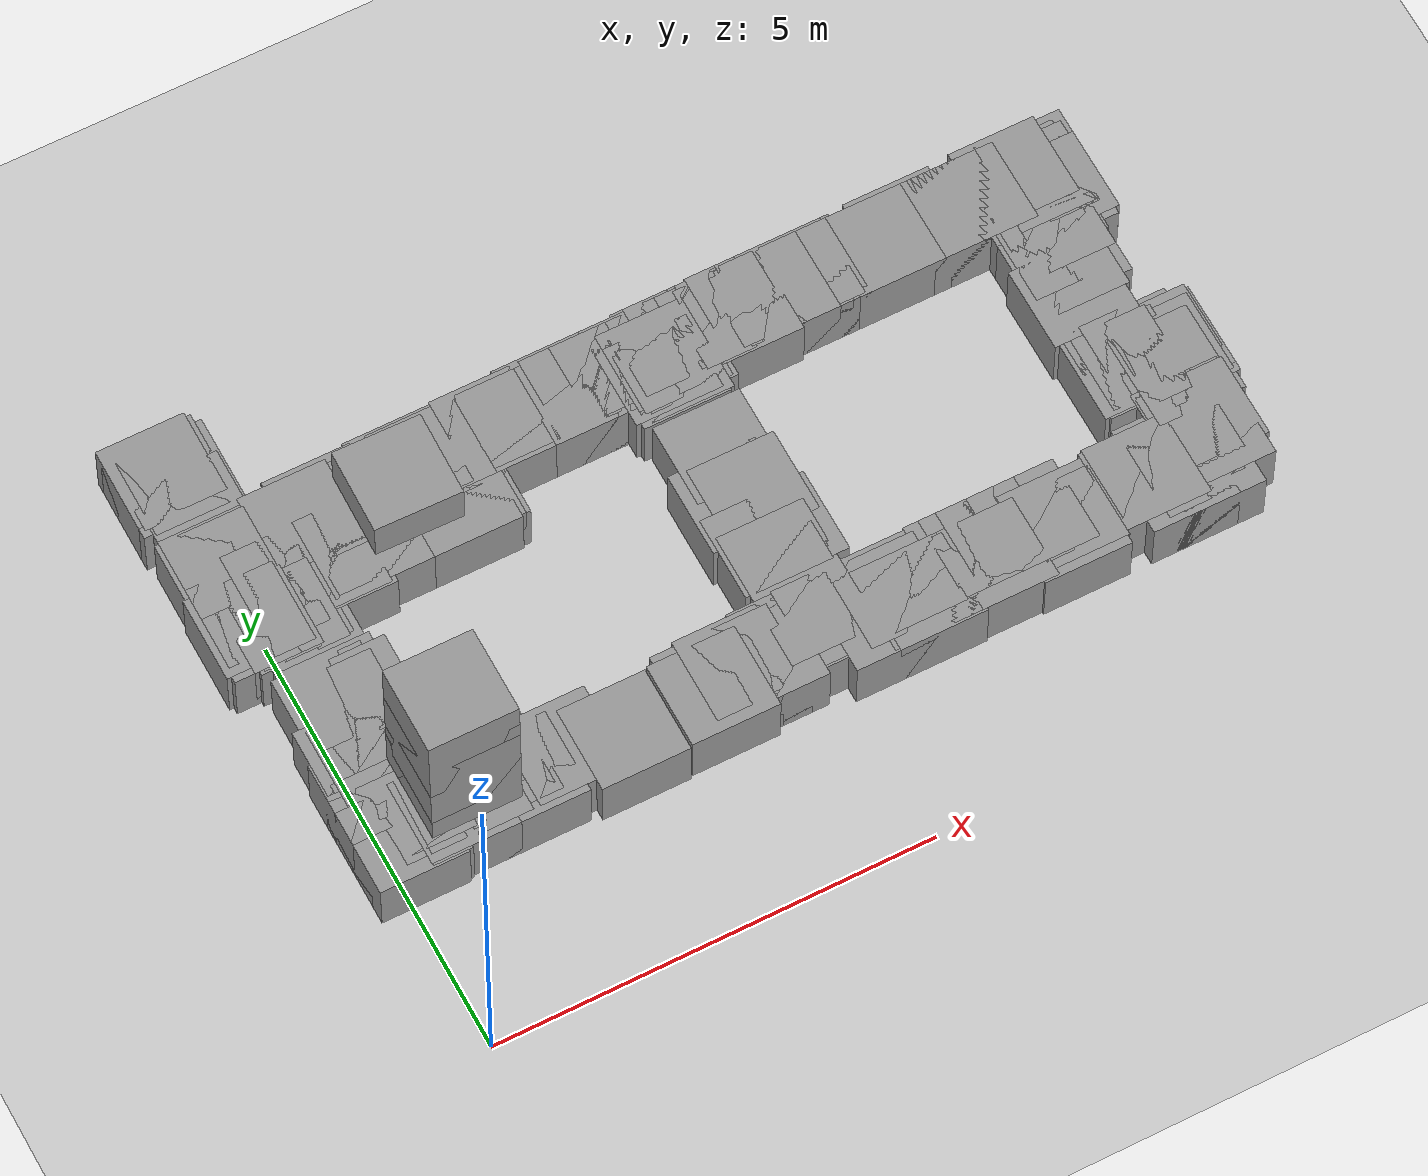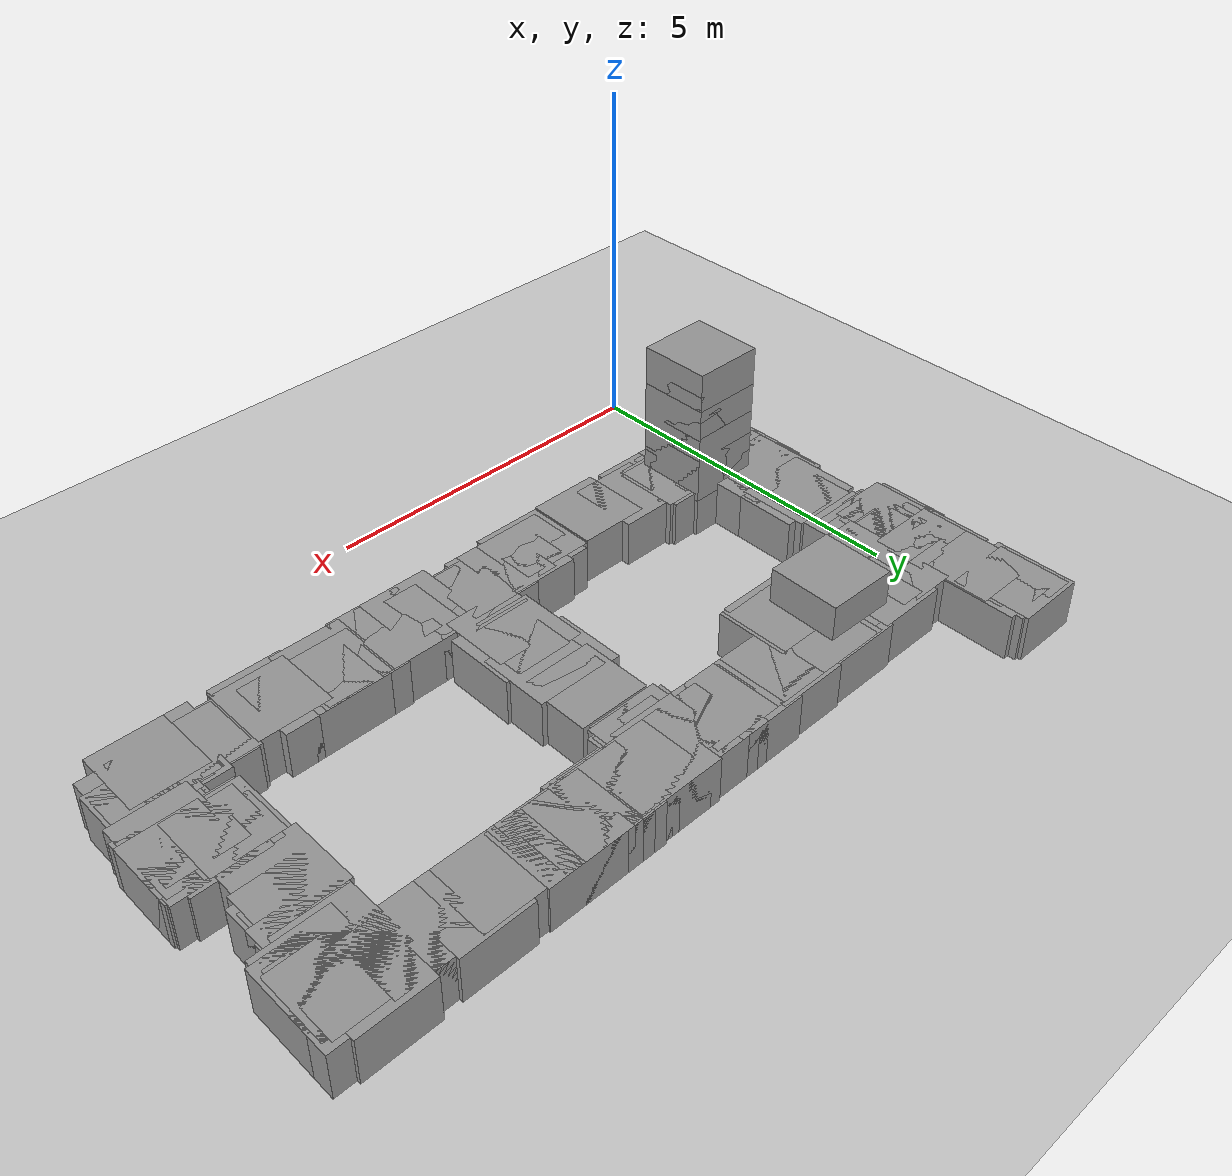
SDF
<sdf version="1.7">
 <world name="default">
  <model name="ground_plane">
   <static>1</static>
   <link name="link">
    <collision name="collision">
     <geometry><plane><normal>0 0 1</normal><size>100 100</size></plane></geometry>
     <surface>
      <contact><collide_bitmask>65535</collide_bitmask></contact>
      <friction><ode><mu>100</mu><mu2>50</mu2></ode></friction>
     </surface>
    </collision>
    <visual name="visual">
     <cast_shadows>0</cast_shadows>
     <geometry><plane><normal>0 0 1</normal><size>100 100</size></plane></geometry>
     <material>
      <script><uri>file://media/materials/scripts/gazebo.material</uri><name>Gazebo/Grey</name></script>
     </material>
    </visual>
   </link>
  </model>
  <include>
   <uri>model://unit_box</uri>
   <name>map_box_53</name>
   <pose>-0.14281 7.02254 0.15000 0.00000 0.00000 0.00000</pose>
   <scale>0.05000 0.05000 0.80000</scale>
  </include>
  <include>
   <uri>model://unit_box</uri>
   <name>map_box_54</name>
   <pose>-0.09281 6.97254 0.15000 0.00000 0.00000 0.00000</pose>
   <scale>0.05000 0.05000 0.80000</scale>
  </include>
  <include>
   <uri>model://unit_box</uri>
   <name>map_box_55</name>
   <pose>-0.14281 6.89754 0.15000 0.00000 0.00000 0.00000</pose>
   <scale>0.05000 0.10000 0.80000</scale>
  </include>
  <include>
   <uri>model://unit_box</uri>
   <name>map_box_56</name>
   <pose>-0.01781 6.87254 0.15000 0.00000 0.00000 0.00000</pose>
   <scale>0.20000 0.05000 0.80000</scale>
  </include>
  <include>
   <uri>model://unit_box</uri>
   <name>map_box_61</name>
   <pose>-0.04281 6.47254 0.15000 0.00000 0.00000 0.00000</pose>
   <scale>0.05000 0.05000 0.80000</scale>
  </include>
  <include>
   <uri>model://unit_box</uri>
   <name>map_box_76</name>
   <pose>9.18219 6.09754 0.15000 0.00000 0.00000 0.00000</pose>
   <scale>0.50000 0.10000 0.80000</scale>
  </include>
  <include>
   <uri>model://unit_box</uri>
   <name>map_box_80</name>
   <pose>5.20719 6.02254 0.15000 0.00000 0.00000 0.00000</pose>
   <scale>0.05000 0.15000 0.80000</scale>
  </include>
  <include>
   <uri>model://unit_box</uri>
   <name>map_box_81</name>
   <pose>5.35719 6.02254 0.15000 0.00000 0.00000 0.00000</pose>
   <scale>0.05000 0.15000 0.80000</scale>
  </include>
  <include>
   <uri>model://unit_box</uri>
   <name>map_box_82</name>
   <pose>5.55719 6.02254 0.15000 0.00000 0.00000 0.00000</pose>
   <scale>0.25000 0.15000 0.80000</scale>
  </include>
  <include>
   <uri>model://unit_box</uri>
   <name>map_box_83</name>
   <pose>5.75719 6.02254 0.15000 0.00000 0.00000 0.00000</pose>
   <scale>0.05000 0.15000 0.80000</scale>
  </include>
  <include>
   <uri>model://unit_box</uri>
   <name>map_box_84</name>
   <pose>5.85719 6.02254 0.15000 0.00000 0.00000 0.00000</pose>
   <scale>0.05000 0.15000 0.80000</scale>
  </include>
  <include>
   <uri>model://unit_box</uri>
   <name>map_box_85</name>
   <pose>6.08219 6.04754 0.15000 0.00000 0.00000 0.00000</pose>
   <scale>0.10000 0.10000 0.80000</scale>
  </include>
  <include>
   <uri>model://unit_box</uri>
   <name>map_box_86</name>
   <pose>6.25719 6.04754 0.15000 0.00000 0.00000 0.00000</pose>
   <scale>0.15000 0.10000 0.80000</scale>
  </include>
  <include>
   <uri>model://unit_box</uri>
   <name>map_box_87</name>
   <pose>6.43219 6.04754 0.15000 0.00000 0.00000 0.00000</pose>
   <scale>0.10000 0.10000 0.80000</scale>
  </include>
  <include>
   <uri>model://unit_box</uri>
   <name>map_box_88</name>
   <pose>6.55719 6.04754 0.15000 0.00000 0.00000 0.00000</pose>
   <scale>0.05000 0.10000 0.80000</scale>
  </include>
  <include>
   <uri>model://unit_box</uri>
   <name>map_box_89</name>
   <pose>6.65719 6.04754 0.15000 0.00000 0.00000 0.00000</pose>
   <scale>0.05000 0.10000 0.80000</scale>
  </include>
  <include>
   <uri>model://unit_box</uri>
   <name>map_box_90</name>
   <pose>6.75719 6.04754 0.15000 0.00000 0.00000 0.00000</pose>
   <scale>0.05000 0.10000 0.80000</scale>
  </include>
  <include>
   <uri>model://unit_box</uri>
   <name>map_box_91</name>
   <pose>7.93219 6.07254 0.15000 0.00000 0.00000 0.00000</pose>
   <scale>2.00000 0.05000 0.80000</scale>
  </include>
  <include>
   <uri>model://unit_box</uri>
   <name>map_box_92</name>
   <pose>9.45719 6.04754 0.15000 0.00000 0.00000 0.00000</pose>
   <scale>0.05000 0.10000 0.80000</scale>
  </include>
  <include>
   <uri>model://unit_box</uri>
   <name>map_box_95</name>
   <pose>3.83219 5.99754 0.15000 0.00000 0.00000 0.00000</pose>
   <scale>0.10000 0.10000 0.80000</scale>
  </include>
  <include>
   <uri>model://unit_box</uri>
   <name>map_box_96</name>
   <pose>4.40719 5.99754 0.15000 0.00000 0.00000 0.00000</pose>
   <scale>0.05000 0.10000 0.80000</scale>
  </include>
  <include>
   <uri>model://unit_box</uri>
   <name>map_box_97</name>
   <pose>4.55719 5.99754 0.15000 0.00000 0.00000 0.00000</pose>
   <scale>0.05000 0.10000 0.80000</scale>
  </include>
  <include>
   <uri>model://unit_box</uri>
   <name>map_box_98</name>
   <pose>4.73219 5.99754 0.15000 0.00000 0.00000 0.00000</pose>
   <scale>0.20000 0.10000 0.80000</scale>
  </include>
  <include>
   <uri>model://unit_box</uri>
   <name>map_box_99</name>
   <pose>5.10719 5.99754 0.15000 0.00000 0.00000 0.00000</pose>
   <scale>0.15000 0.10000 0.80000</scale>
  </include>
  <include>
   <uri>model://unit_box</uri>
   <name>map_box_100</name>
   <pose>5.28219 5.99754 0.15000 0.00000 0.00000 0.00000</pose>
   <scale>0.10000 0.10000 0.80000</scale>
  </include>
  <include>
   <uri>model://unit_box</uri>
   <name>map_box_101</name>
   <pose>5.40719 5.99754 0.15000 0.00000 0.00000 0.00000</pose>
   <scale>0.05000 0.10000 0.80000</scale>
  </include>
  <include>
   <uri>model://unit_box</uri>
   <name>map_box_102</name>
   <pose>5.70719 5.99754 0.15000 0.00000 0.00000 0.00000</pose>
   <scale>0.05000 0.10000 0.80000</scale>
  </include>
  <include>
   <uri>model://unit_box</uri>
   <name>map_box_103</name>
   <pose>5.80719 5.99754 0.15000 0.00000 0.00000 0.00000</pose>
   <scale>0.05000 0.10000 0.80000</scale>
  </include>
  <include>
   <uri>model://unit_box</uri>
   <name>map_box_104</name>
   <pose>5.95719 6.02254 0.15000 0.00000 0.00000 0.00000</pose>
   <scale>0.15000 0.05000 0.80000</scale>
  </include>
  <include>
   <uri>model://unit_box</uri>
   <name>map_box_105</name>
   <pose>6.15719 6.02254 0.15000 0.00000 0.00000 0.00000</pose>
   <scale>0.05000 0.05000 0.80000</scale>
  </include>
  <include>
   <uri>model://unit_box</uri>
   <name>map_box_106</name>
   <pose>6.35719 6.02254 0.15000 0.00000 0.00000 0.00000</pose>
   <scale>0.05000 0.05000 0.80000</scale>
  </include>
  <include>
   <uri>model://unit_box</uri>
   <name>map_box_107</name>
   <pose>6.50719 6.02254 0.15000 0.00000 0.00000 0.00000</pose>
   <scale>0.05000 0.05000 0.80000</scale>
  </include>
  <include>
   <uri>model://unit_box</uri>
   <name>map_box_108</name>
   <pose>6.60719 6.02254 0.15000 0.00000 0.00000 0.00000</pose>
   <scale>0.05000 0.05000 0.80000</scale>
  </include>
  <include>
   <uri>model://unit_box</uri>
   <name>map_box_109</name>
   <pose>6.70719 6.02254 0.15000 0.00000 0.00000 0.00000</pose>
   <scale>0.05000 0.05000 0.80000</scale>
  </include>
  <include>
   <uri>model://unit_box</uri>
   <name>map_box_110</name>
   <pose>7.58219 6.02254 0.15000 0.00000 0.00000 0.00000</pose>
   <scale>1.60000 0.05000 0.80000</scale>
  </include>
  <include>
   <uri>model://unit_box</uri>
   <name>map_box_111</name>
   <pose>8.45719 6.02254 0.15000 0.00000 0.00000 0.00000</pose>
   <scale>0.05000 0.05000 0.80000</scale>
  </include>
  <include>
   <uri>model://unit_box</uri>
   <name>map_box_112</name>
   <pose>8.65719 6.02254 0.15000 0.00000 0.00000 0.00000</pose>
   <scale>0.25000 0.05000 0.80000</scale>
  </include>
  <include>
   <uri>model://unit_box</uri>
   <name>map_box_113</name>
   <pose>9.40719 5.92254 0.15000 0.00000 0.00000 0.00000</pose>
   <scale>0.05000 0.25000 0.80000</scale>
  </include>
  <include>
   <uri>model://unit_box</uri>
   <name>map_box_119</name>
   <pose>2.10719 5.94754 0.15000 0.00000 0.00000 0.00000</pose>
   <scale>0.25000 0.10000 0.80000</scale>
  </include>
  <include>
   <uri>model://unit_box</uri>
   <name>map_box_120</name>
   <pose>2.35719 5.92254 0.15000 0.00000 0.00000 0.00000</pose>
   <scale>0.05000 0.15000 0.80000</scale>
  </include>
  <include>
   <uri>model://unit_box</uri>
   <name>map_box_121</name>
   <pose>3.10719 5.97254 0.15000 0.00000 0.00000 0.00000</pose>
   <scale>1.35000 0.05000 0.80000</scale>
  </include>
  <include>
   <uri>model://unit_box</uri>
   <name>map_box_122</name>
   <pose>4.13219 5.97254 0.15000 0.00000 0.00000 0.00000</pose>
   <scale>0.50000 0.05000 0.80000</scale>
  </include>
  <include>
   <uri>model://unit_box</uri>
   <name>map_box_123</name>
   <pose>4.48219 5.97254 0.15000 0.00000 0.00000 0.00000</pose>
   <scale>0.10000 0.05000 0.80000</scale>
  </include>
  <include>
   <uri>model://unit_box</uri>
   <name>map_box_124</name>
   <pose>4.60719 5.97254 0.15000 0.00000 0.00000 0.00000</pose>
   <scale>0.05000 0.05000 0.80000</scale>
  </include>
  <include>
   <uri>model://unit_box</uri>
   <name>map_box_125</name>
   <pose>4.88219 5.92254 0.15000 0.00000 0.00000 0.00000</pose>
   <scale>0.10000 0.15000 0.80000</scale>
  </include>
  <include>
   <uri>model://unit_box</uri>
   <name>map_box_126</name>
   <pose>5.00719 5.82254 0.15000 0.00000 0.00000 0.00000</pose>
   <scale>0.05000 0.35000 0.80000</scale>
  </include>
  <include>
   <uri>model://unit_box</uri>
   <name>map_box_127</name>
   <pose>5.90719 5.97254 0.15000 0.00000 0.00000 0.00000</pose>
   <scale>0.05000 0.05000 0.80000</scale>
  </include>
  <include>
   <uri>model://unit_box</uri>
   <name>map_box_128</name>
   <pose>9.33219 5.97254 0.15000 0.00000 0.00000 0.00000</pose>
   <scale>0.10000 0.05000 0.80000</scale>
  </include>
  <include>
   <uri>model://unit_box</uri>
   <name>map_box_130</name>
   <pose>-0.04281 5.79754 0.15000 0.00000 0.00000 0.00000</pose>
   <scale>0.05000 0.30000 0.80000</scale>
  </include>
  <include>
   <uri>model://unit_box</uri>
   <name>map_box_131</name>
   <pose>1.18219 5.92254 0.15000 0.00000 0.00000 0.00000</pose>
   <scale>1.60000 0.05000 0.80000</scale>
  </include>
  <include>
   <uri>model://unit_box</uri>
   <name>map_box_132</name>
   <pose>2.28219 5.92254 0.15000 0.00000 0.00000 0.00000</pose>
   <scale>0.10000 0.05000 0.80000</scale>
  </include>
  <include>
   <uri>model://unit_box</uri>
   <name>map_box_133</name>
   <pose>3.05719 5.92254 0.15000 0.00000 0.00000 0.00000</pose>
   <scale>1.35000 0.05000 0.80000</scale>
  </include>
  <include>
   <uri>model://unit_box</uri>
   <name>map_box_134</name>
   <pose>4.03219 5.92254 0.15000 0.00000 0.00000 0.00000</pose>
   <scale>0.10000 0.05000 0.80000</scale>
  </include>
  <include>
   <uri>model://unit_box</uri>
   <name>map_box_135</name>
   <pose>4.15719 5.92254 0.15000 0.00000 0.00000 0.00000</pose>
   <scale>0.05000 0.05000 0.80000</scale>
  </include>
  <include>
   <uri>model://unit_box</uri>
   <name>map_box_136</name>
   <pose>5.05719 5.79754 0.15000 0.00000 0.00000 0.00000</pose>
   <scale>0.05000 0.30000 0.80000</scale>
  </include>
  <include>
   <uri>model://unit_box</uri>
   <name>map_box_137</name>
   <pose>9.30719 5.89754 0.15000 0.00000 0.00000 0.00000</pose>
   <scale>0.05000 0.10000 0.80000</scale>
  </include>
  <include>
   <uri>model://unit_box</uri>
   <name>map_box_142</name>
   <pose>0.88219 5.87254 0.15000 0.00000 0.00000 0.00000</pose>
   <scale>1.00000 0.05000 0.80000</scale>
  </include>
  <include>
   <uri>model://unit_box</uri>
   <name>map_box_143</name>
   <pose>1.45719 5.87254 0.15000 0.00000 0.00000 0.00000</pose>
   <scale>0.05000 0.05000 0.80000</scale>
  </include>
  <include>
   <uri>model://unit_box</uri>
   <name>map_box_144</name>
   <pose>2.43219 5.87254 0.15000 0.00000 0.00000 0.00000</pose>
   <scale>0.10000 0.05000 0.80000</scale>
  </include>
  <include>
   <uri>model://unit_box</uri>
   <name>map_box_145</name>
   <pose>4.95719 5.87254 0.15000 0.00000 0.00000 0.00000</pose>
   <scale>0.05000 0.05000 0.80000</scale>
  </include>
  <include>
   <uri>model://unit_box</uri>
   <name>map_box_146</name>
   <pose>9.35719 5.87254 0.15000 0.00000 0.00000 0.00000</pose>
   <scale>0.05000 0.05000 0.80000</scale>
  </include>
  <include>
   <uri>model://unit_box</uri>
   <name>map_box_149</name>
   <pose>0.43219 5.34754 0.15000 0.00000 0.00000 0.00000</pose>
   <scale>0.10000 1.00000 0.80000</scale>
  </include>
  <include>
   <uri>model://unit_box</uri>
   <name>map_box_150</name>
   <pose>1.35719 5.82254 0.15000 0.00000 0.00000 0.00000</pose>
   <scale>0.05000 0.05000 0.80000</scale>
  </include>
  <include>
   <uri>model://unit_box</uri>
   <name>map_box_151</name>
   <pose>4.85719 5.74754 0.15000 0.00000 0.00000 0.00000</pose>
   <scale>0.05000 0.20000 0.80000</scale>
  </include>
  <include>
   <uri>model://unit_box</uri>
   <name>map_box_152</name>
   <pose>9.45719 5.74754 0.15000 0.00000 0.00000 0.00000</pose>
   <scale>0.05000 0.20000 0.80000</scale>
  </include>
  <include>
   <uri>model://unit_box</uri>
   <name>map_box_158</name>
   <pose>-0.09281 5.77254 0.15000 0.00000 0.00000 0.00000</pose>
   <scale>0.05000 0.05000 0.80000</scale>
  </include>
  <include>
   <uri>model://unit_box</uri>
   <name>map_box_159</name>
   <pose>4.95719 5.69754 0.15000 0.00000 0.00000 0.00000</pose>
   <scale>0.05000 0.20000 0.80000</scale>
  </include>
  <include>
   <uri>model://unit_box</uri>
   <name>map_box_165</name>
   <pose>4.90719 5.67254 0.15000 0.00000 0.00000 0.00000</pose>
   <scale>0.05000 0.05000 0.80000</scale>
  </include>
  <include>
   <uri>model://unit_box</uri>
   <name>map_box_166</name>
   <pose>9.10719 5.59754 0.15000 0.00000 0.00000 0.00000</pose>
   <scale>0.05000 0.20000 0.80000</scale>
  </include>
  <include>
   <uri>model://unit_box</uri>
   <name>map_box_167</name>
   <pose>9.40719 5.67254 0.15000 0.00000 0.00000 0.00000</pose>
   <scale>0.05000 0.05000 0.80000</scale>
  </include>
  <include>
   <uri>model://unit_box</uri>
   <name>map_box_171</name>
   <pose>0.00719 5.54754 0.15000 0.00000 0.00000 0.00000</pose>
   <scale>0.05000 0.20000 0.80000</scale>
  </include>
  <include>
   <uri>model://unit_box</uri>
   <name>map_box_175</name>
   <pose>9.05719 4.57254 0.15000 0.00000 0.00000 0.00000</pose>
   <scale>0.05000 2.05000 0.80000</scale>
  </include>
  <include>
   <uri>model://unit_box</uri>
   <name>map_box_176</name>
   <pose>9.23219 5.57254 0.15000 0.00000 0.00000 0.00000</pose>
   <scale>0.10000 0.05000 0.80000</scale>
  </include>
  <include>
   <uri>model://unit_box</uri>
   <name>map_box_179</name>
   <pose>9.20719 5.37254 0.15000 0.00000 0.00000 0.00000</pose>
   <scale>0.05000 0.35000 0.80000</scale>
  </include>
  <include>
   <uri>model://unit_box</uri>
   <name>map_box_182</name>
   <pose>0.05719 5.37254 0.15000 0.00000 0.00000 0.00000</pose>
   <scale>0.05000 0.25000 0.80000</scale>
  </include>
  <include>
   <uri>model://unit_box</uri>
   <name>map_box_187</name>
   <pose>1.30719 5.39754 0.15000 0.00000 0.00000 0.00000</pose>
   <scale>0.05000 0.10000 0.80000</scale>
  </include>
  <include>
   <uri>model://unit_box</uri>
   <name>map_box_188</name>
   <pose>2.40719 5.37254 0.15000 0.00000 0.00000 0.00000</pose>
   <scale>0.05000 0.15000 0.80000</scale>
  </include>
  <include>
   <uri>model://unit_box</uri>
   <name>map_box_189</name>
   <pose>9.10719 4.89754 0.15000 0.00000 0.00000 0.00000</pose>
   <scale>0.05000 1.10000 0.80000</scale>
  </include>
  <include>
   <uri>model://unit_box</uri>
   <name>map_box_194</name>
   <pose>0.00719 5.34754 0.15000 0.00000 0.00000 0.00000</pose>
   <scale>0.05000 0.10000 0.80000</scale>
  </include>
  <include>
   <uri>model://unit_box</uri>
   <name>map_box_195</name>
   <pose>1.25719 5.37254 0.15000 0.00000 0.00000 0.00000</pose>
   <scale>0.05000 0.05000 0.80000</scale>
  </include>
  <include>
   <uri>model://unit_box</uri>
   <name>map_box_196</name>
   <pose>1.35719 5.34754 0.15000 0.00000 0.00000 0.00000</pose>
   <scale>0.05000 0.10000 0.80000</scale>
  </include>
  <include>
   <uri>model://unit_box</uri>
   <name>map_box_197</name>
   <pose>2.35719 5.34754 0.15000 0.00000 0.00000 0.00000</pose>
   <scale>0.05000 0.10000 0.80000</scale>
  </include>
  <include>
   <uri>model://unit_box</uri>
   <name>map_box_198</name>
   <pose>2.45719 5.37254 0.15000 0.00000 0.00000 0.00000</pose>
   <scale>0.05000 0.05000 0.80000</scale>
  </include>
  <include>
   <uri>model://unit_box</uri>
   <name>map_box_203</name>
   <pose>0.85719 5.29754 0.15000 0.00000 0.00000 0.00000</pose>
   <scale>0.05000 0.10000 0.80000</scale>
  </include>
  <include>
   <uri>model://unit_box</uri>
   <name>map_box_208</name>
   <pose>0.10719 5.19754 0.15000 0.00000 0.00000 0.00000</pose>
   <scale>0.05000 0.20000 0.80000</scale>
  </include>
  <include>
   <uri>model://unit_box</uri>
   <name>map_box_209</name>
   <pose>0.90719 5.27254 0.15000 0.00000 0.00000 0.00000</pose>
   <scale>0.05000 0.05000 0.80000</scale>
  </include>
  <include>
   <uri>model://unit_box</uri>
   <name>map_box_213</name>
   <pose>-0.04281 5.17254 0.15000 0.00000 0.00000 0.00000</pose>
   <scale>0.05000 0.05000 0.80000</scale>
  </include>
  <include>
   <uri>model://unit_box</uri>
   <name>map_box_214</name>
   <pose>9.15719 5.14754 0.15000 0.00000 0.00000 0.00000</pose>
   <scale>0.05000 0.10000 0.80000</scale>
  </include>
  <include>
   <uri>model://unit_box</uri>
   <name>map_box_216</name>
   <pose>0.20719 5.12254 0.15000 0.00000 0.00000 0.00000</pose>
   <scale>0.15000 0.05000 0.80000</scale>
  </include>
  <include>
   <uri>model://unit_box</uri>
   <name>map_box_217</name>
   <pose>9.20719 5.02254 0.15000 0.00000 0.00000 0.00000</pose>
   <scale>0.05000 0.25000 0.80000</scale>
  </include>
  <include>
   <uri>model://unit_box</uri>
   <name>map_box_219</name>
   <pose>-0.11781 5.07254 0.15000 0.00000 0.00000 0.00000</pose>
   <scale>0.10000 0.05000 0.80000</scale>
  </include>
  <include>
   <uri>model://unit_box</uri>
   <name>map_box_220</name>
   <pose>0.15719 4.99754 0.15000 0.00000 0.00000 0.00000</pose>
   <scale>0.05000 0.20000 0.80000</scale>
  </include>
  <include>
   <uri>model://unit_box</uri>
   <name>map_box_221</name>
   <pose>0.25719 4.97254 0.15000 0.00000 0.00000 0.00000</pose>
   <scale>0.05000 0.25000 0.80000</scale>
  </include>
  <include>
   <uri>model://unit_box</uri>
   <name>map_box_223</name>
   <pose>-0.06781 4.99754 0.15000 0.00000 0.00000 0.00000</pose>
   <scale>0.10000 0.10000 0.80000</scale>
  </include>
  <include>
   <uri>model://unit_box</uri>
   <name>map_box_224</name>
   <pose>0.20719 4.94754 0.15000 0.00000 0.00000 0.00000</pose>
   <scale>0.05000 0.20000 0.80000</scale>
  </include>
  <include>
   <uri>model://unit_box</uri>
   <name>map_box_226</name>
   <pose>0.33219 4.89754 0.15000 0.00000 0.00000 0.00000</pose>
   <scale>0.10000 0.10000 0.80000</scale>
  </include>
  <include>
   <uri>model://unit_box</uri>
   <name>map_box_230</name>
   <pose>4.98219 4.64754 0.15000 0.00000 0.00000 0.00000</pose>
   <scale>0.20000 0.10000 0.80000</scale>
  </include>
  <include>
   <uri>model://unit_box</uri>
   <name>map_box_231</name>
   <pose>4.85719 4.07254 0.15000 0.00000 0.00000 0.00000</pose>
   <scale>0.05000 1.15000 0.80000</scale>
  </include>
  <include>
   <uri>model://unit_box</uri>
   <name>map_box_232</name>
   <pose>5.10719 3.49754 0.15000 0.00000 0.00000 0.00000</pose>
   <scale>0.05000 2.30000 0.80000</scale>
  </include>
  <include>
   <uri>model://unit_box</uri>
   <name>map_box_233</name>
   <pose>4.90719 3.47254 0.15000 0.00000 0.00000 0.00000</pose>
   <scale>0.05000 2.25000 0.80000</scale>
  </include>
  <include>
   <uri>model://unit_box</uri>
   <name>map_box_234</name>
   <pose>5.05719 4.04754 0.15000 0.00000 0.00000 0.00000</pose>
   <scale>0.05000 1.10000 0.80000</scale>
  </include>
  <include>
   <uri>model://unit_box</uri>
   <name>map_box_252</name>
   <pose>0.38219 3.89754 0.15000 0.00000 0.00000 0.00000</pose>
   <scale>0.20000 0.10000 0.80000</scale>
  </include>
  <include>
   <uri>model://unit_box</uri>
   <name>map_box_254</name>
   <pose>0.25719 3.84754 0.15000 0.00000 0.00000 0.00000</pose>
   <scale>0.05000 0.10000 0.80000</scale>
  </include>
  <include>
   <uri>model://unit_box</uri>
   <name>map_box_255</name>
   <pose>0.50719 3.79754 0.15000 0.00000 0.00000 0.00000</pose>
   <scale>0.05000 0.20000 0.80000</scale>
  </include>
  <include>
   <uri>model://unit_box</uri>
   <name>map_box_259</name>
   <pose>0.30719 3.72254 0.15000 0.00000 0.00000 0.00000</pose>
   <scale>0.05000 0.25000 0.80000</scale>
  </include>
  <include>
   <uri>model://unit_box</uri>
   <name>map_box_260</name>
   <pose>0.45719 3.19754 0.15000 0.00000 0.00000 0.00000</pose>
   <scale>0.05000 1.30000 0.80000</scale>
  </include>
  <include>
   <uri>model://unit_box</uri>
   <name>map_box_263</name>
   <pose>9.48219 3.39754 0.15000 0.00000 0.00000 0.00000</pose>
   <scale>0.10000 0.80000 0.80000</scale>
  </include>
  <include>
   <uri>model://unit_box</uri>
   <name>map_box_265</name>
   <pose>9.38219 3.67254 0.15000 0.00000 0.00000 0.00000</pose>
   <scale>0.10000 0.15000 0.80000</scale>
  </include>
  <include>
   <uri>model://unit_box</uri>
   <name>map_box_267</name>
   <pose>9.23219 3.64754 0.15000 0.00000 0.00000 0.00000</pose>
   <scale>0.20000 0.10000 0.80000</scale>
  </include>
  <include>
   <uri>model://unit_box</uri>
   <name>map_box_270</name>
   <pose>0.50719 2.94754 0.15000 0.00000 0.00000 0.00000</pose>
   <scale>0.05000 1.40000 0.80000</scale>
  </include>
  <include>
   <uri>model://unit_box</uri>
   <name>map_box_271</name>
   <pose>9.10719 3.59754 0.15000 0.00000 0.00000 0.00000</pose>
   <scale>0.05000 0.10000 0.80000</scale>
  </include>
  <include>
   <uri>model://unit_box</uri>
   <name>map_box_272</name>
   <pose>9.58219 3.62254 0.15000 0.00000 0.00000 0.00000</pose>
   <scale>0.10000 0.05000 0.80000</scale>
  </include>
  <include>
   <uri>model://unit_box</uri>
   <name>map_box_274</name>
   <pose>9.15719 3.57254 0.15000 0.00000 0.00000 0.00000</pose>
   <scale>0.05000 0.05000 0.80000</scale>
  </include>
  <include>
   <uri>model://unit_box</uri>
   <name>map_box_275</name>
   <pose>9.60719 3.57254 0.15000 0.00000 0.00000 0.00000</pose>
   <scale>0.05000 0.05000 0.80000</scale>
  </include>
  <include>
   <uri>model://unit_box</uri>
   <name>map_box_277</name>
   <pose>0.30719 3.17254 0.15000 0.00000 0.00000 0.00000</pose>
   <scale>0.05000 0.75000 0.80000</scale>
  </include>
  <include>
   <uri>model://unit_box</uri>
   <name>map_box_278</name>
   <pose>9.55719 3.52254 0.15000 0.00000 0.00000 0.00000</pose>
   <scale>0.05000 0.05000 0.80000</scale>
  </include>
  <include>
   <uri>model://unit_box</uri>
   <name>map_box_280</name>
   <pose>9.60719 3.47254 0.15000 0.00000 0.00000 0.00000</pose>
   <scale>0.05000 0.05000 0.80000</scale>
  </include>
  <include>
   <uri>model://unit_box</uri>
   <name>map_box_281</name>
   <pose>9.55719 3.27254 0.15000 0.00000 0.00000 0.00000</pose>
   <scale>0.05000 0.35000 0.80000</scale>
  </include>
  <include>
   <uri>model://unit_box</uri>
   <name>map_box_287</name>
   <pose>0.18219 3.22254 0.15000 0.00000 0.00000 0.00000</pose>
   <scale>0.10000 0.05000 0.80000</scale>
  </include>
  <include>
   <uri>model://unit_box</uri>
   <name>map_box_288</name>
   <pose>4.95719 3.22254 0.15000 0.00000 0.00000 0.00000</pose>
   <scale>0.05000 0.05000 0.80000</scale>
  </include>
  <include>
   <uri>model://unit_box</uri>
   <name>map_box_290</name>
   <pose>0.20719 3.14754 0.15000 0.00000 0.00000 0.00000</pose>
   <scale>0.05000 0.10000 0.80000</scale>
  </include>
  <include>
   <uri>model://unit_box</uri>
   <name>map_box_293</name>
   <pose>0.20719 3.02254 0.15000 0.00000 0.00000 0.00000</pose>
   <scale>0.05000 0.05000 0.80000</scale>
  </include>
  <include>
   <uri>model://unit_box</uri>
   <name>map_box_294</name>
   <pose>9.50719 2.69754 0.15000 0.00000 0.00000 0.00000</pose>
   <scale>0.05000 0.60000 0.80000</scale>
  </include>
  <include>
   <uri>model://unit_box</uri>
   <name>map_box_296</name>
   <pose>0.15719 2.82254 0.15000 0.00000 0.00000 0.00000</pose>
   <scale>0.05000 0.25000 0.80000</scale>
  </include>
  <include>
   <uri>model://unit_box</uri>
   <name>map_box_299</name>
   <pose>0.30719 2.67254 0.15000 0.00000 0.00000 0.00000</pose>
   <scale>0.05000 0.15000 0.80000</scale>
  </include>
  <include>
   <uri>model://unit_box</uri>
   <name>map_box_300</name>
   <pose>4.95719 2.57254 0.15000 0.00000 0.00000 0.00000</pose>
   <scale>0.05000 0.35000 0.80000</scale>
  </include>
  <include>
   <uri>model://unit_box</uri>
   <name>map_box_301</name>
   <pose>9.45719 2.72254 0.15000 0.00000 0.00000 0.00000</pose>
   <scale>0.05000 0.05000 0.80000</scale>
  </include>
  <include>
   <uri>model://unit_box</uri>
   <name>map_box_303</name>
   <pose>0.35719 2.44754 0.15000 0.00000 0.00000 0.00000</pose>
   <scale>0.05000 0.40000 0.80000</scale>
  </include>
  <include>
   <uri>model://unit_box</uri>
   <name>map_box_304</name>
   <pose>1.25719 2.47254 0.15000 0.00000 0.00000 0.00000</pose>
   <scale>0.05000 0.35000 0.80000</scale>
  </include>
  <include>
   <uri>model://unit_box</uri>
   <name>map_box_305</name>
   <pose>1.30719 2.42254 0.15000 0.00000 0.00000 0.00000</pose>
   <scale>0.05000 0.35000 0.80000</scale>
  </include>
  <include>
   <uri>model://unit_box</uri>
   <name>map_box_307</name>
   <pose>0.25719 2.52254 0.15000 0.00000 0.00000 0.00000</pose>
   <scale>0.05000 0.05000 0.80000</scale>
  </include>
  <include>
   <uri>model://unit_box</uri>
   <name>map_box_308</name>
   <pose>8.70719 2.39754 0.15000 0.00000 0.00000 0.00000</pose>
   <scale>0.05000 0.30000 0.80000</scale>
  </include>
  <include>
   <uri>model://unit_box</uri>
   <name>map_box_309</name>
   <pose>9.45719 2.47254 0.15000 0.00000 0.00000 0.00000</pose>
   <scale>0.05000 0.15000 0.80000</scale>
  </include>
  <include>
   <uri>model://unit_box</uri>
   <name>map_box_310</name>
   <pose>0.45719 2.42254 0.15000 0.00000 0.00000 0.00000</pose>
   <scale>0.05000 0.15000 0.80000</scale>
  </include>
  <include>
   <uri>model://unit_box</uri>
   <name>map_box_311</name>
   <pose>5.15719 2.42254 0.15000 0.00000 0.00000 0.00000</pose>
   <scale>0.05000 0.15000 0.80000</scale>
  </include>
  <include>
   <uri>model://unit_box</uri>
   <name>map_box_312</name>
   <pose>6.68219 2.44754 0.15000 0.00000 0.00000 0.00000</pose>
   <scale>0.20000 0.10000 0.80000</scale>
  </include>
  <include>
   <uri>model://unit_box</uri>
   <name>map_box_313</name>
   <pose>6.85719 2.44754 0.15000 0.00000 0.00000 0.00000</pose>
   <scale>0.05000 0.10000 0.80000</scale>
  </include>
  <include>
   <uri>model://unit_box</uri>
   <name>map_box_314</name>
   <pose>6.95719 2.44754 0.15000 0.00000 0.00000 0.00000</pose>
   <scale>0.05000 0.10000 0.80000</scale>
  </include>
  <include>
   <uri>model://unit_box</uri>
   <name>map_box_315</name>
   <pose>7.05719 2.44754 0.15000 0.00000 0.00000 0.00000</pose>
   <scale>0.05000 0.10000 0.80000</scale>
  </include>
  <include>
   <uri>model://unit_box</uri>
   <name>map_box_316</name>
   <pose>7.40719 2.44754 0.15000 0.00000 0.00000 0.00000</pose>
   <scale>0.55000 0.10000 0.80000</scale>
  </include>
  <include>
   <uri>model://unit_box</uri>
   <name>map_box_317</name>
   <pose>8.65719 2.37254 0.15000 0.00000 0.00000 0.00000</pose>
   <scale>0.05000 0.25000 0.80000</scale>
  </include>
  <include>
   <uri>model://unit_box</uri>
   <name>map_box_318</name>
   <pose>9.08219 2.44754 0.15000 0.00000 0.00000 0.00000</pose>
   <scale>0.70000 0.10000 0.80000</scale>
  </include>
  <include>
   <uri>model://unit_box</uri>
   <name>map_box_321</name>
   <pose>0.15719 2.42254 0.15000 0.00000 0.00000 0.00000</pose>
   <scale>0.05000 0.05000 0.80000</scale>
  </include>
  <include>
   <uri>model://unit_box</uri>
   <name>map_box_322</name>
   <pose>4.63219 2.39754 0.15000 0.00000 0.00000 0.00000</pose>
   <scale>0.50000 0.10000 0.80000</scale>
  </include>
  <include>
   <uri>model://unit_box</uri>
   <name>map_box_323</name>
   <pose>5.88219 2.42254 0.15000 0.00000 0.00000 0.00000</pose>
   <scale>1.40000 0.05000 0.80000</scale>
  </include>
  <include>
   <uri>model://unit_box</uri>
   <name>map_box_324</name>
   <pose>6.80719 2.42254 0.15000 0.00000 0.00000 0.00000</pose>
   <scale>0.05000 0.05000 0.80000</scale>
  </include>
  <include>
   <uri>model://unit_box</uri>
   <name>map_box_325</name>
   <pose>6.90719 2.42254 0.15000 0.00000 0.00000 0.00000</pose>
   <scale>0.05000 0.05000 0.80000</scale>
  </include>
  <include>
   <uri>model://unit_box</uri>
   <name>map_box_326</name>
   <pose>7.00719 2.42254 0.15000 0.00000 0.00000 0.00000</pose>
   <scale>0.05000 0.05000 0.80000</scale>
  </include>
  <include>
   <uri>model://unit_box</uri>
   <name>map_box_327</name>
   <pose>7.10719 2.42254 0.15000 0.00000 0.00000 0.00000</pose>
   <scale>0.05000 0.05000 0.80000</scale>
  </include>
  <include>
   <uri>model://unit_box</uri>
   <name>map_box_329</name>
   <pose>0.20719 2.37254 0.15000 0.00000 0.00000 0.00000</pose>
   <scale>0.05000 0.05000 0.80000</scale>
  </include>
  <include>
   <uri>model://unit_box</uri>
   <name>map_box_330</name>
   <pose>0.55719 2.32254 0.15000 0.00000 0.00000 0.00000</pose>
   <scale>0.05000 0.15000 0.80000</scale>
  </include>
  <include>
   <uri>model://unit_box</uri>
   <name>map_box_331</name>
   <pose>0.93219 2.34754 0.15000 0.00000 0.00000 0.00000</pose>
   <scale>0.60000 0.10000 0.80000</scale>
  </include>
  <include>
   <uri>model://unit_box</uri>
   <name>map_box_332</name>
   <pose>2.00719 2.34754 0.15000 0.00000 0.00000 0.00000</pose>
   <scale>1.35000 0.10000 0.80000</scale>
  </include>
  <include>
   <uri>model://unit_box</uri>
   <name>map_box_333</name>
   <pose>4.00719 2.37254 0.15000 0.00000 0.00000 0.00000</pose>
   <scale>0.75000 0.05000 0.80000</scale>
  </include>
  <include>
   <uri>model://unit_box</uri>
   <name>map_box_334</name>
   <pose>5.75719 2.37254 0.15000 0.00000 0.00000 0.00000</pose>
   <scale>1.15000 0.05000 0.80000</scale>
  </include>
  <include>
   <uri>model://unit_box</uri>
   <name>map_box_335</name>
   <pose>7.68219 2.32254 0.15000 0.00000 0.00000 0.00000</pose>
   <scale>0.10000 0.15000 0.80000</scale>
  </include>
  <include>
   <uri>model://unit_box</uri>
   <name>map_box_337</name>
   <pose>0.60719 2.29754 0.15000 0.00000 0.00000 0.00000</pose>
   <scale>0.05000 0.10000 0.80000</scale>
  </include>
  <include>
   <uri>model://unit_box</uri>
   <name>map_box_338</name>
   <pose>3.73219 2.32254 0.15000 0.00000 0.00000 0.00000</pose>
   <scale>0.30000 0.05000 0.80000</scale>
  </include>
  <include>
   <uri>model://unit_box</uri>
   <name>map_box_339</name>
   <pose>4.05719 2.32254 0.15000 0.00000 0.00000 0.00000</pose>
   <scale>0.25000 0.05000 0.80000</scale>
  </include>
  <include>
   <uri>model://unit_box</uri>
   <name>map_box_340</name>
   <pose>4.25719 2.32254 0.15000 0.00000 0.00000 0.00000</pose>
   <scale>0.05000 0.05000 0.80000</scale>
  </include>
  <include>
   <uri>model://unit_box</uri>
   <name>map_box_341</name>
   <pose>9.13219 2.29754 0.15000 0.00000 0.00000 0.00000</pose>
   <scale>0.80000 0.10000 0.80000</scale>
  </include>
  <include>
   <uri>model://unit_box</uri>
   <name>map_box_342</name>
   <pose>0.20719 2.24754 0.15000 0.00000 0.00000 0.00000</pose>
   <scale>0.05000 0.10000 0.80000</scale>
  </include>
  <include>
   <uri>model://unit_box</uri>
   <name>map_box_343</name>
   <pose>0.75719 2.27254 0.15000 0.00000 0.00000 0.00000</pose>
   <scale>0.25000 0.05000 0.80000</scale>
  </include>
  <include>
   <uri>model://unit_box</uri>
   <name>map_box_344</name>
   <pose>1.53219 2.27254 0.15000 0.00000 0.00000 0.00000</pose>
   <scale>0.40000 0.05000 0.80000</scale>
  </include>
  <include>
   <uri>model://unit_box</uri>
   <name>map_box_345</name>
   <pose>2.63219 2.22254 0.15000 0.00000 0.00000 0.00000</pose>
   <scale>0.10000 0.15000 0.80000</scale>
  </include>
  <include>
   <uri>model://unit_box</uri>
   <name>map_box_346</name>
   <pose>3.65719 2.24754 0.15000 0.00000 0.00000 0.00000</pose>
   <scale>0.15000 0.10000 0.80000</scale>
  </include>
  <include>
   <uri>model://unit_box</uri>
   <name>map_box_347</name>
   <pose>5.95719 2.24754 0.15000 0.00000 0.00000 0.00000</pose>
   <scale>0.05000 0.10000 0.80000</scale>
  </include>
  <include>
   <uri>model://unit_box</uri>
   <name>map_box_348</name>
   <pose>6.83219 2.24754 0.15000 0.00000 0.00000 0.00000</pose>
   <scale>1.60000 0.10000 0.80000</scale>
  </include>
  <include>
   <uri>model://unit_box</uri>
   <name>map_box_349</name>
   <pose>0.15719 2.22254 0.15000 0.00000 0.00000 0.00000</pose>
   <scale>0.05000 0.05000 0.80000</scale>
  </include>
  <include>
   <uri>model://unit_box</uri>
   <name>map_box_353</name>
   <pose>5.50719 2.22254 0.15000 0.00000 0.00000 0.00000</pose>
   <scale>0.85000 0.05000 0.80000</scale>
  </include>
  <include>
   <uri>model://unit_box</uri>
   <name>map_box_354</name>
   <pose>6.00719 2.22254 0.15000 0.00000 0.00000 0.00000</pose>
   <scale>0.05000 0.05000 0.80000</scale>
  </include>
  <include>
   <uri>model://unit_box</uri>
   <name>map_box_355</name>
   <pose>7.65719 2.22254 0.15000 0.00000 0.00000 0.00000</pose>
   <scale>0.05000 0.05000 0.80000</scale>
  </include>
  <include>
   <uri>model://unit_box</uri>
   <name>map_box_356</name>
   <pose>8.90719 2.22254 0.15000 0.00000 0.00000 0.00000</pose>
   <scale>0.05000 0.05000 0.80000</scale>
  </include>
  <include>
   <uri>model://unit_box</uri>
   <name>map_box_357</name>
   <pose>9.20719 2.22254 0.15000 0.00000 0.00000 0.00000</pose>
   <scale>0.05000 0.05000 0.80000</scale>
  </include>
  <include>
   <uri>model://unit_box</uri>
   <name>shelf_0</name>
   <pose>0.89250 2.52500 0.05000 0.00000 0.00000 3.14159</pose>
   <scale>0.74000 0.28018 0.10000</scale>
  </include>
  <include>
   <uri>model://unit_box</uri>
   <name>shelf_1</name>
   <pose>0.89250 2.52500 0.41000 0.00000 0.00000 3.14159</pose>
   <scale>0.74000 0.28018 0.02000</scale>
  </include>
  <include>
   <uri>model://unit_box</uri>
   <name>shelf_2</name>
   <pose>0.89250 2.52500 0.69500 0.00000 0.00000 3.14159</pose>
   <scale>0.74000 0.28018 0.03000</scale>
  </include>
  <include>
   <uri>model://unit_box</uri>
   <name>shelf_3</name>
   <pose>0.89250 2.52500 1.04500 0.00000 0.00000 3.14159</pose>
   <scale>0.74000 0.28018 0.03000</scale>
  </include>
  <include>
   <uri>model://unit_box</uri>
   <name>shelf_4</name>
   <pose>0.89250 2.52500 1.46500 0.00000 0.00000 3.14159</pose>
   <scale>0.74000 0.28018 0.03000</scale>
  </include>
  <include>
   <uri>model://unit_box</uri>
   <name>shelf_5</name>
   <pose>0.89250 2.52500 1.68500 0.00000 0.00000 3.14159</pose>
   <scale>0.74000 0.28018 0.03000</scale>
  </include>
  <include>
   <uri>model://unit_box</uri>
   <name>shelf_6</name>
   <pose>0.89250 2.52500 2.01500 0.00000 0.00000 3.14159</pose>
   <scale>0.74000 0.28018 0.03000</scale>
  </include>
  <include>
   <uri>model://unit_box</uri>
   <name>laundry_table</name>
   <pose>1.85000 5.64000 0.65000 0.00000 0.00000 -0.01887</pose>
   <scale>1.06019 0.55000 0.16000</scale>
  </include>
 </world>
</sdf>
